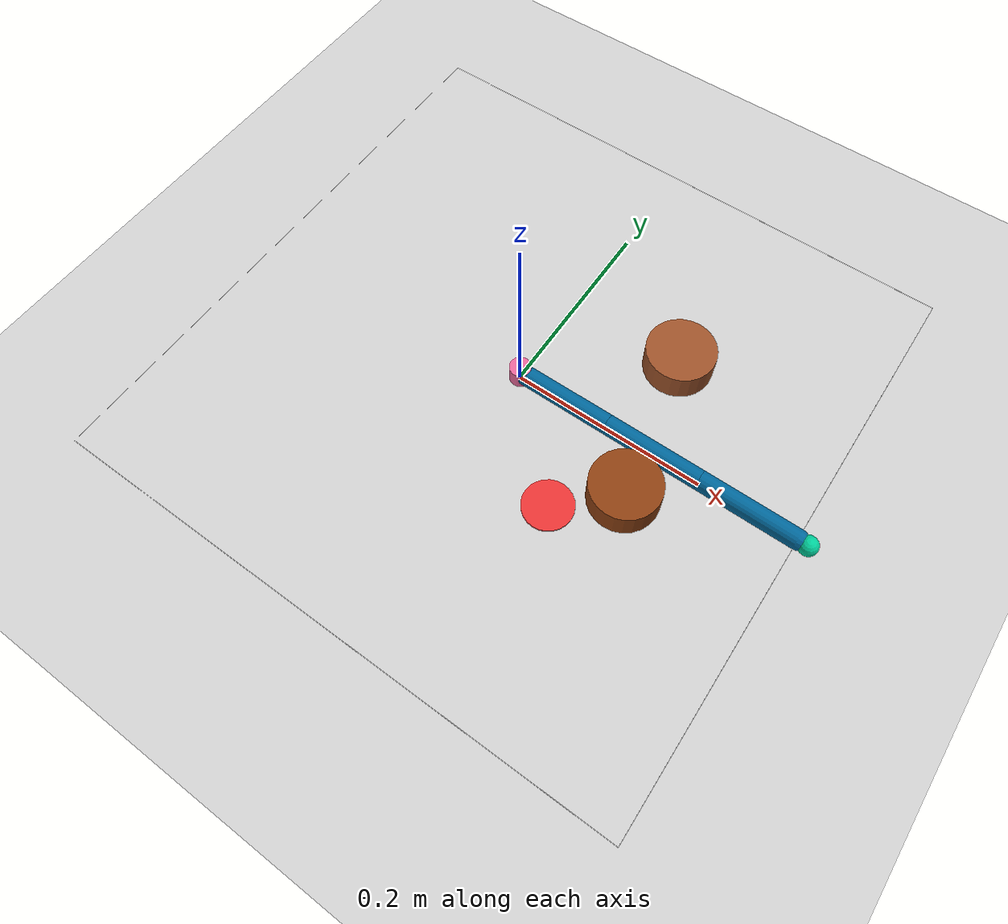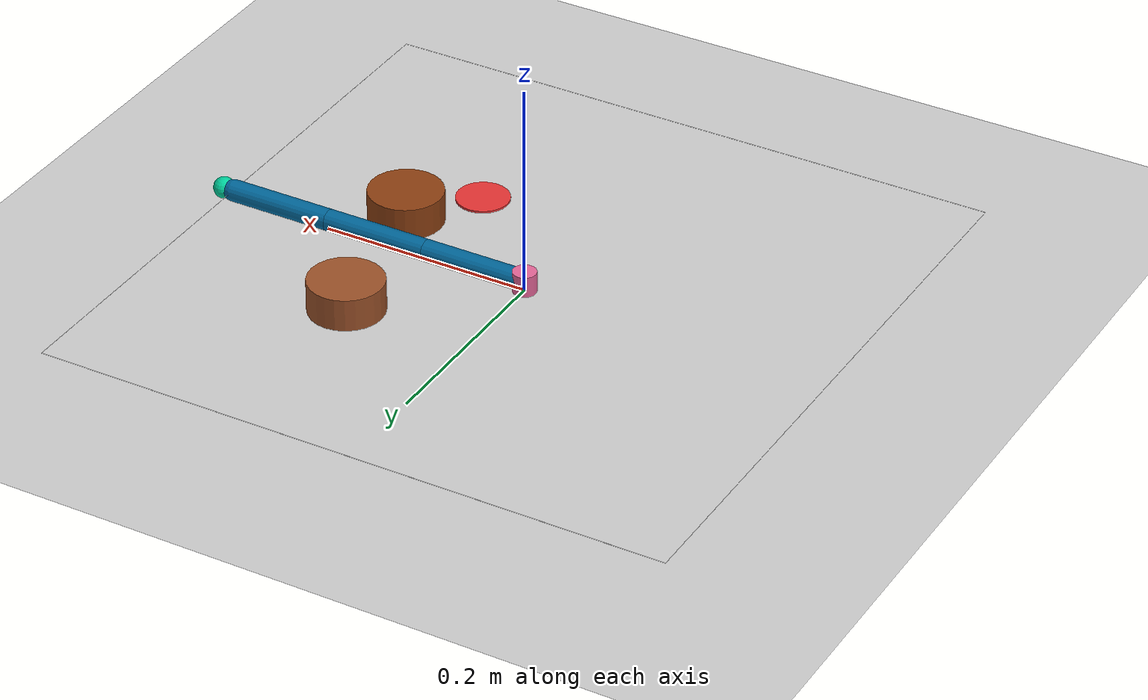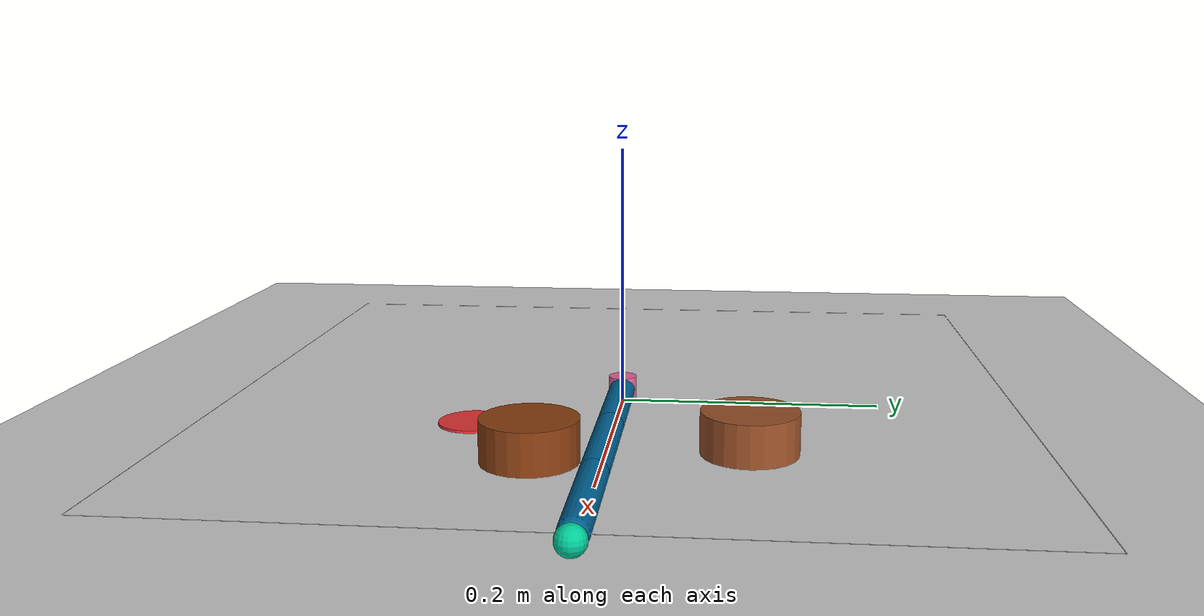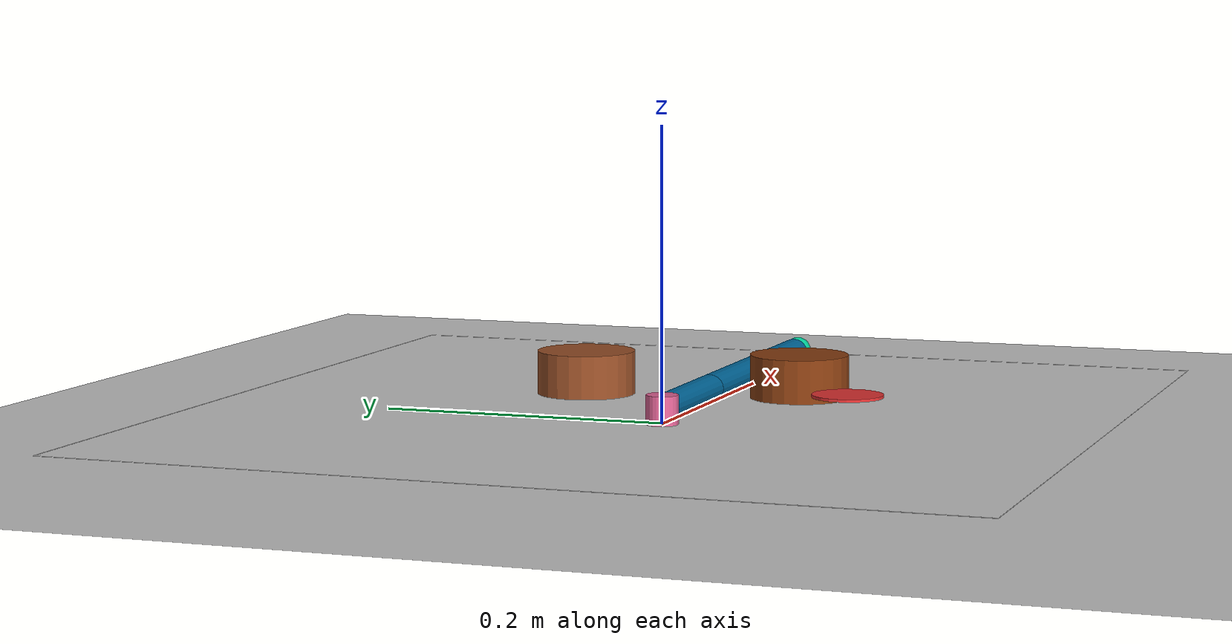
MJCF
<mujoco model="reacher">
	<compiler angle="radian" inertiafromgeom="true"/>
	<default>
		<joint armature="1" damping="1" limited="true"/>
		<geom contype="0" friction="1 0.1 0.1" rgba="0.7 0.7 0 1"/>
	</default>
	<option gravity="0 0 -9.81" integrator="RK4" timestep="0.01"/>
	<worldbody>
		<!-- Arena -->
		<geom conaffinity="0" contype="0" name="ground" pos="0 0 0" rgba="0.8 0.8 0.8 1." size="1 1 10" type="plane"/>
		<geom conaffinity="0" fromto="-.3 -.3 .01 .3 -.3 .01" name="sideS" rgba="0.8 0.8 0.8 1." size=".0002" type="capsule"/>
		<geom conaffinity="0" fromto=" .3 -.3 .01 .3  .3 .01" name="sideE" rgba="0.8 0.8 0.8 1." size=".0002" type="capsule"/>
		<geom conaffinity="0" fromto="-.3  .3 .01 .3  .3 .01" name="sideN" rgba="0.8 0.8 0.8 1." size=".0002" type="capsule"/>
		<geom conaffinity="0" fromto="-.3 -.3 .01 -.3 .3 .01" name="sideW" rgba="0.8 0.8 0.8 1." size=".0002" type="capsule"/>
		<!-- Arm -->
		<geom conaffinity="0" contype="0" fromto="0 0 0 0 0 0.02" name="root" rgba="0.9 0.4 0.6 1" size=".011" type="cylinder"/>
		<body name="body0" pos="0 0 .01">
			<geom fromto="0 0 0 0.1 0 0" name="link0" contype="1" conaffinity="1" rgba="0.0 0.4 0.6 1" size=".01" type="capsule"/>
			<joint axis="0 0 1" limited="false" name="joint0" pos="0 0 0" type="hinge"/>
			<body name="body1" pos="0.1 0 0">
				<joint axis="0 0 1" limited="true" name="joint1" pos="0 0 0" range="-3.0 3.0" type="hinge"/>
				<geom fromto="0 0 0 0.1 0 0" name="link1" contype="1" conaffinity="1"  rgba="0.0 0.4 0.6 1" size=".01" type="capsule"/>
				<body name="body2" pos="0.1 0 0">
					<joint axis="0 0 1" limited="true" name="joint2" range="-3.0 3.0" type="hinge"/>
					<geom fromto="0 0 0 0.1 0 0" name="link2" contype="1" conaffinity="1" rgba="0.0 0.4 0.6 1" size=".01" type="capsule"/>
					<body name="fingertip" pos="0.11 0 0">
						<geom name="fingertip" contype="1" conaffinity="1" pos="0 0 0" rgba="0.0 0.8 0.6 1" size=".01" type="sphere"/>
					</body>
				</body>
			</body>
		</body>
		<!-- Target -->
		<body name="target" pos=".1 -.1 .01">
			<joint armature="0" axis="1 0 0" damping="0" limited="true" name="target_x" pos="0 0 0" range="-.27 .27" ref=".1" stiffness="0" type="slide"/>
			<joint armature="0" axis="0 1 0" damping="0" limited="true" name="target_y" pos="0 0 0" range="-.27 .27" ref="-.1" stiffness="0" type="slide"/>
			<geom conaffinity="0" contype="0" name="target" pos="0 0 0" rgba="0.9 0.2 0.2 1" size=".025 .001 .002" type="cylinder"/>
		</body>

		<body name="obstacle_1" pos=".12 .1 .01">
			<geom conaffinity="1" contype="0" name="distractor_1" pos="0 0 0" rgba="0.61 0.32 0.16 1" size=".035 .02 .05" type="cylinder"/>
		</body>

		<body name="obstacle_2" pos=".15 -.05 .01">
			<geom conaffinity="1" contype="0" name="distractor_2" pos="0 0 0" rgba="0.55 0.25 0.07 1" size=".035 .02 .05" type="cylinder"/>
		</body>

	</worldbody>
	<actuator>
		<motor ctrllimited="true" ctrlrange="-1.0 1.0" gear="200.0" joint="joint0"/>
		<motor ctrllimited="true" ctrlrange="-1.0 1.0" gear="200.0" joint="joint1"/>
		<motor ctrllimited="true" ctrlrange="-1. 1." gear="200" joint="joint2"/>
	</actuator>
</mujoco>
